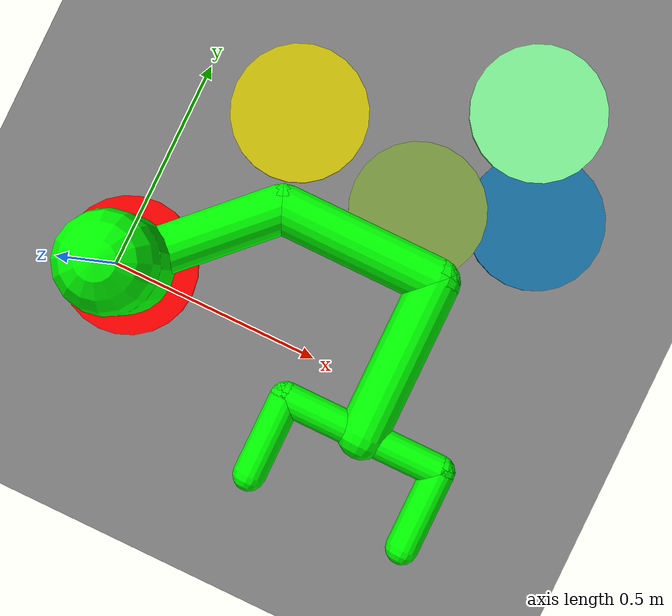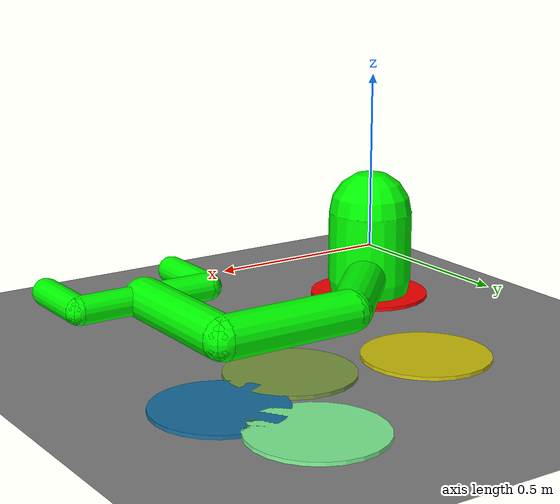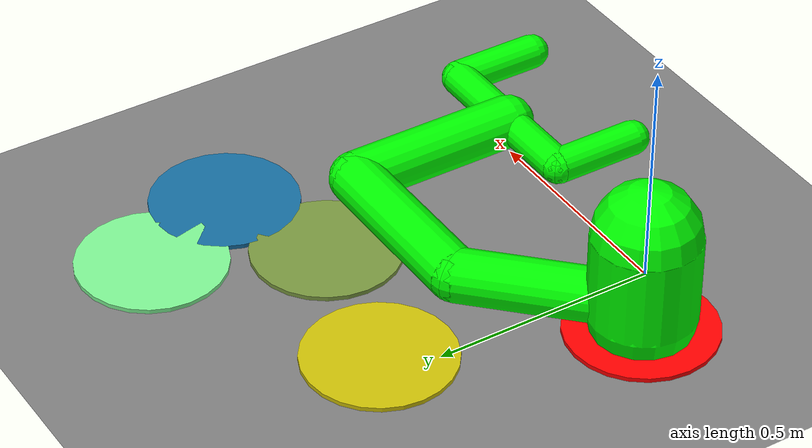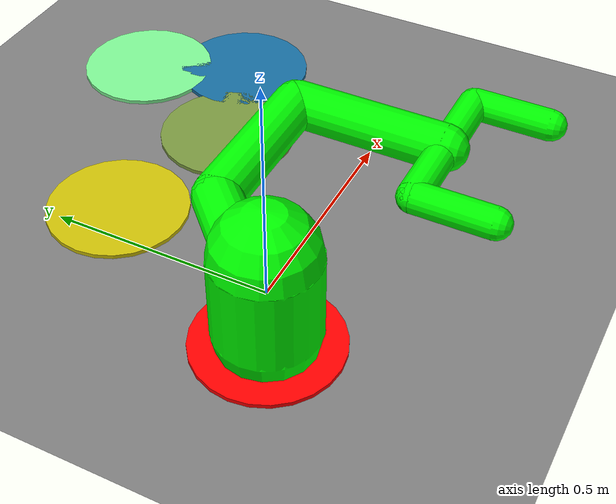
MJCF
<mujoco model="arm3d">
    <compiler angle="radian" coordinate="local" inertiafromgeom="true" />
    <option gravity="0 0 0" integrator="Euler" iterations="20" timestep="0.01" />

    <default>
        <joint armature="0.04" damping="1" limited="true" />
        <geom conaffinity="1" condim="1" contype="1" density="300" friction=".8 .1 .1" margin="0.002" />
    </default>

    <worldbody>
        <light diffuse=".5 .5 .5" dir="0 0 -1" pos="0 0 3" />
        <geom conaffinity="1" contype="1" pos="0 0.5 -0.15" size="2 2 0.1" type="plane" />

        <body name="palm" pos="0 0 0">
            <geom fromto="0 0 -0.1 0 0 0.1" rgba="0. 1. 0. 1" size="0.12" type="capsule" />
            <body axisangle="0 0 1 0.785" name="proximal_1" pos="0 0 -0.075">
                <joint axis="0 0 1" damping="1.0" name="proximal_j_1" pos="0 0 0" range="-2.5 2.5" type="hinge" />
                <geom conaffinity="1" contype="1" fromto="0 0 0 0.4 0 0" rgba="0. 1. 0. 1" size="0.06" type="capsule" />
                <body axisangle="0 0 1 -0.785" name="distal_1" pos="0.4 0 0">
                    <joint axis="0 0 1" damping="1.0" name="distal_j_1" pos="0 0 0" range="-2.3213 2.3" type="hinge" />
                    <geom conaffinity="1" contype="1" fromto="0 0 0 0.4 0 0" rgba="0. 1. 0. 1" size="0.06" type="capsule" />
                    <body axisangle="0 0 1 -1.57" name="distal_2" pos="0.4 0 0">
                        <joint axis="0 0 1" damping="1.0" name="distal_j_2" pos="0 0 0" range="-2.3213 2.3" type="hinge" />
                        <geom conaffinity="1" contype="1" fromto="0 0 0 0.4 0 0" rgba="0. 1. 0. 1" size="0.06" type="capsule" />
                        <body name="distal_4" pos="0.4 0 0">
                            <site name="tip arml" pos="0.1 -0.2 0" size="0.01" />
                            <site name="tip armr" pos="0.1 0.2 0" size="0.01" />

                            <geom conaffinity="1" contype="1" fromto="0 -0.2 0 0 0.2 0" rgba="0. 1. 0. 1" size="0.04" type="capsule" />
                            <geom conaffinity="1" contype="1" fromto="0 -0.2 0 0.2 -0.2 0" rgba="0. 1. 0. 1" size="0.04" type="capsule" />
                            <geom conaffinity="1" contype="1" fromto="0 0.2 0 0.2 0.2 0" rgba="0. 1. 0. 1" size="0.04" type="capsule" />
                        </body>
                    </body>
                </body>
            </body>
        </body>

        <body name="goal" pos="0 0 -0.145">

            <geom conaffinity="0" contype="0" density="0.00001" rgba="1. 0. 0. 1" size="0.17 0.005 0.2" type="cylinder" />
            <joint axis="0 1 0" damping="0.5" name="goal_slidey" pos="0 0 0" range="-10.3213 10.3" type="slide" />
            <joint axis="1 0 0" damping="0.5" name="goal_slidex" pos="0 0 0" range="-10.3213 10.3" type="slide" />
        </body>

    <geom conaffinity="0" contype="0" density="0.00001" name="object0" pos="0.213136 0.513010 -0.145" rgba="0.810431 0.755965 0.028847 1" size="0.17 0.005 0.2" type="cylinder" /><geom conaffinity="0" contype="0" density="0.00001" name="object1" pos="0.738093 0.764108 -0.145" rgba="0.495161 0.959703 0.580850 1" size="0.17 0.005 0.2" type="cylinder" /><geom conaffinity="0" contype="0" density="0.00001" name="object2" pos="0.575090 0.423113 -0.145" rgba="0.478771 0.599400 0.251818 1" size="0.17 0.005 0.2" type="cylinder" /><geom conaffinity="0" contype="0" density="0.00001" name="object3" pos="0.844274 0.524937 -0.145" rgba="0.087803 0.431849 0.629937 1" size="0.17 0.005 0.2" type="cylinder" /></worldbody>

    <actuator>
        <motor ctrllimited="true" ctrlrange="-3 3" joint="proximal_j_1" />
        <motor ctrllimited="true" ctrlrange="-3 3" joint="distal_j_1" />
        <motor ctrllimited="true" ctrlrange="-3 3" joint="distal_j_2" />

    </actuator>
</mujoco>
